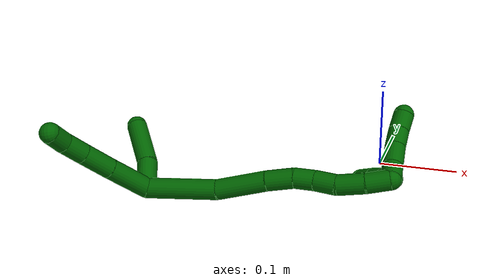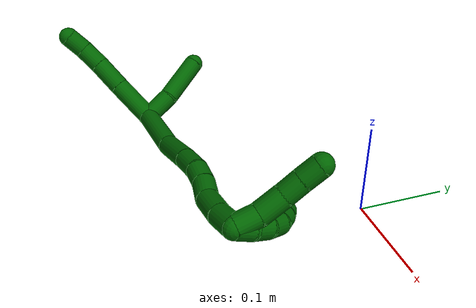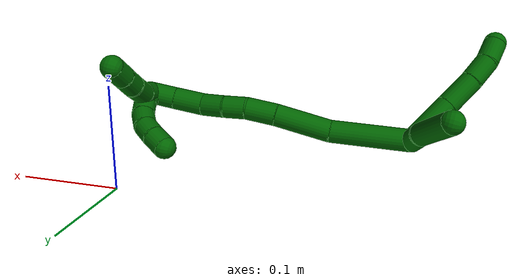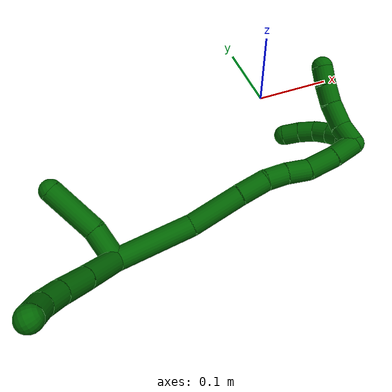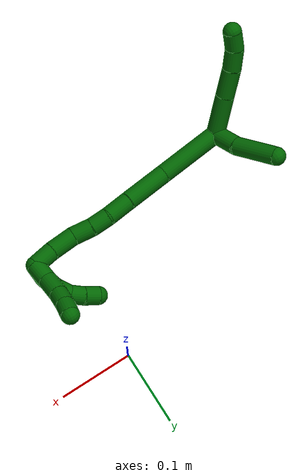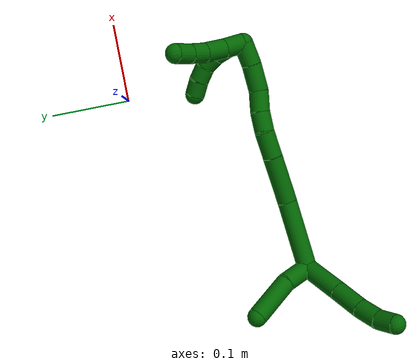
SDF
<sdf version="1.7">
 <world name="default">
  <model name="6">
   <static>0</static>
   <link name="6">
    <collision name="collision-cylinder-e_1_2_8">
     <pose>0.005439 -0.024422 0.012985 1.08212 0.194163 0.116902</pose>
     <geometry><cylinder><radius>0.0125</radius><length>0.056378</length></cylinder></geometry>
     <surface>
      <friction><ode><mu>1.16</mu><mu2>1.16</mu2><slip1>0</slip1><slip2>0</slip2></ode></friction>
      <contact><ode><kp>1e+06</kp><kd>1</kd><max_vel>0</max_vel><min_depth>0.001</min_depth></ode></contact>
     </surface>
    </collision>
    <visual name="visual-cylinder-e_1_2_8">
     <pose>0.005439 -0.024422 0.012985 1.08212 0.194163 0.116902</pose>
     <geometry><cylinder><radius>0.0125</radius><length>0.056378</length></cylinder></geometry>
     <material><ambient>0 0.392157 0.003922 1</ambient></material>
    </visual>
    <collision name="collision-cylinder-e_2_8_9">
     <pose>0.015054 -0.065844 0.034896 1.0873 0.214173 0.129762</pose>
     <geometry><cylinder><radius>0.0125</radius><length>0.0393</length></cylinder></geometry>
     <surface>
      <friction><ode><mu>1.16</mu><mu2>1.16</mu2><slip1>0</slip1><slip2>0</slip2></ode></friction>
      <contact><ode><kp>1e+06</kp><kd>1</kd><max_vel>0</max_vel><min_depth>0.001</min_depth></ode></contact>
     </surface>
    </collision>
    <visual name="visual-cylinder-e_2_8_9">
     <pose>0.015054 -0.065844 0.034896 1.0873 0.214173 0.129762</pose>
     <geometry><cylinder><radius>0.0125</radius><length>0.0393</length></cylinder></geometry>
     <material><ambient>0 0.392157 0.003922 1</ambient></material>
    </visual>
    <collision name="collision-cylinder-e_3_9_10">
     <pose>0.021712 -0.09614 0.04926 1.18256 0.171063 0.115008</pose>
     <geometry><cylinder><radius>0.0125</radius><length>0.029154</length></cylinder></geometry>
     <surface>
      <friction><ode><mu>1.16</mu><mu2>1.16</mu2><slip1>0</slip1><slip2>0</slip2></ode></friction>
      <contact><ode><kp>1e+06</kp><kd>1</kd><max_vel>0</max_vel><min_depth>0.001</min_depth></ode></contact>
     </surface>
    </collision>
    <visual name="visual-cylinder-e_3_9_10">
     <pose>0.021712 -0.09614 0.04926 1.18256 0.171063 0.115008</pose>
     <geometry><cylinder><radius>0.0125</radius><length>0.029154</length></cylinder></geometry>
     <material><ambient>0 0.392157 0.003922 1</ambient></material>
    </visual>
    <collision name="collision-cylinder-e_4_10_6">
     <pose>0.025386 -0.121839 0.056448 1.43059 0.094866 0.082433</pose>
     <geometry><cylinder><radius>0.0125</radius><length>0.025168</length></cylinder></geometry>
     <surface>
      <friction><ode><mu>1.16</mu><mu2>1.16</mu2><slip1>0</slip1><slip2>0</slip2></ode></friction>
      <contact><ode><kp>1e+06</kp><kd>1</kd><max_vel>0</max_vel><min_depth>0.001</min_depth></ode></contact>
     </surface>
    </collision>
    <visual name="visual-cylinder-e_4_10_6">
     <pose>0.025386 -0.121839 0.056448 1.43059 0.094866 0.082433</pose>
     <geometry><cylinder><radius>0.0125</radius><length>0.025168</length></cylinder></geometry>
     <material><ambient>0 0.392157 0.003922 1</ambient></material>
    </visual>
    <collision name="collision-cylinder-e_1_2_11">
     <pose>0.018455 0.004788 0.002814 -1.03945 1.27849 -0.804335</pose>
     <geometry><cylinder><radius>0.0125</radius><length>0.038545</length></cylinder></geometry>
     <surface>
      <friction><ode><mu>1.16</mu><mu2>1.16</mu2><slip1>0</slip1><slip2>0</slip2></ode></friction>
      <contact><ode><kp>1e+06</kp><kd>1</kd><max_vel>0</max_vel><min_depth>0.001</min_depth></ode></contact>
     </surface>
    </collision>
    <visual name="visual-cylinder-e_1_2_11">
     <pose>0.018455 0.004788 0.002814 -1.03945 1.27849 -0.804335</pose>
     <geometry><cylinder><radius>0.0125</radius><length>0.038545</length></cylinder></geometry>
     <material><ambient>0 0.392157 0.003922 1</ambient></material>
    </visual>
    <collision name="collision-cylinder-e_2_11_5">
     <pose>0.065141 0.014429 0.016747 -0.411565 1.16493 -0.273275</pose>
     <geometry><cylinder><radius>0.0125</radius><length>0.061455</length></cylinder></geometry>
     <surface>
      <friction><ode><mu>1.16</mu><mu2>1.16</mu2><slip1>0</slip1><slip2>0</slip2></ode></friction>
      <contact><ode><kp>1e+06</kp><kd>1</kd><max_vel>0</max_vel><min_depth>0.001</min_depth></ode></contact>
     </surface>
    </collision>
    <visual name="visual-cylinder-e_2_11_5">
     <pose>0.065141 0.014429 0.016747 -0.411565 1.16493 -0.273275</pose>
     <geometry><cylinder><radius>0.0125</radius><length>0.061455</length></cylinder></geometry>
     <material><ambient>0 0.392157 0.003922 1</ambient></material>
    </visual>
    <collision name="collision-cylinder-e_1_2_12">
     <pose>-0.003775 0.006653 -0.043632 -2.99028 -0.085334 1.02586</pose>
     <geometry><cylinder><radius>0.0125</radius><length>0.088594</length></cylinder></geometry>
     <surface>
      <friction><ode><mu>1.16</mu><mu2>1.16</mu2><slip1>0</slip1><slip2>0</slip2></ode></friction>
      <contact><ode><kp>1e+06</kp><kd>1</kd><max_vel>0</max_vel><min_depth>0.001</min_depth></ode></contact>
     </surface>
    </collision>
    <visual name="visual-cylinder-e_1_2_12">
     <pose>-0.003775 0.006653 -0.043632 -2.99028 -0.085334 1.02586</pose>
     <geometry><cylinder><radius>0.0125</radius><length>0.088594</length></cylinder></geometry>
     <material><ambient>0 0.392157 0.003922 1</ambient></material>
    </visual>
    <collision name="collision-cylinder-e_2_12_13">
     <pose>-0.005085 0.014497 -0.118224 -3.10315 0.079412 -2.24021</pose>
     <geometry><cylinder><radius>0.0125</radius><length>0.062164</length></cylinder></geometry>
     <surface>
      <friction><ode><mu>1.16</mu><mu2>1.16</mu2><slip1>0</slip1><slip2>0</slip2></ode></friction>
      <contact><ode><kp>1e+06</kp><kd>1</kd><max_vel>0</max_vel><min_depth>0.001</min_depth></ode></contact>
     </surface>
    </collision>
    <visual name="visual-cylinder-e_2_12_13">
     <pose>-0.005085 0.014497 -0.118224 -3.10315 0.079412 -2.24021</pose>
     <geometry><cylinder><radius>0.0125</radius><length>0.062164</length></cylinder></geometry>
     <material><ambient>0 0.392157 0.003922 1</ambient></material>
    </visual>
    <collision name="collision-cylinder-e_3_13_14">
     <pose>-0.002239 0.017157 -0.165957 -3.05422 0.022618 -0.506312</pose>
     <geometry><cylinder><radius>0.0125</radius><length>0.03368</length></cylinder></geometry>
     <surface>
      <friction><ode><mu>1.16</mu><mu2>1.16</mu2><slip1>0</slip1><slip2>0</slip2></ode></friction>
      <contact><ode><kp>1e+06</kp><kd>1</kd><max_vel>0</max_vel><min_depth>0.001</min_depth></ode></contact>
     </surface>
    </collision>
    <visual name="visual-cylinder-e_3_13_14">
     <pose>-0.002239 0.017157 -0.165957 -3.05422 0.022618 -0.506312</pose>
     <geometry><cylinder><radius>0.0125</radius><length>0.03368</length></cylinder></geometry>
     <material><ambient>0 0.392157 0.003922 1</ambient></material>
    </visual>
    <collision name="collision-cylinder-e_4_14_15">
     <pose>-0.004227 0.02035 -0.194959 -3.00154 -0.189494 1.86996</pose>
     <geometry><cylinder><radius>0.0125</radius><length>0.025155</length></cylinder></geometry>
     <surface>
      <friction><ode><mu>1.16</mu><mu2>1.16</mu2><slip1>0</slip1><slip2>0</slip2></ode></friction>
      <contact><ode><kp>1e+06</kp><kd>1</kd><max_vel>0</max_vel><min_depth>0.001</min_depth></ode></contact>
     </surface>
    </collision>
    <visual name="visual-cylinder-e_4_14_15">
     <pose>-0.004227 0.02035 -0.194959 -3.00154 -0.189494 1.86996</pose>
     <geometry><cylinder><radius>0.0125</radius><length>0.025155</length></cylinder></geometry>
     <material><ambient>0 0.392157 0.003922 1</ambient></material>
    </visual>
    <collision name="collision-cylinder-e_5_15_16">
     <pose>-0.010687 0.02259 -0.22012 -3.10172 -0.306191 2.88456</pose>
     <geometry><cylinder><radius>0.0125</radius><length>0.027142</length></cylinder></geometry>
     <surface>
      <friction><ode><mu>1.16</mu><mu2>1.16</mu2><slip1>0</slip1><slip2>0</slip2></ode></friction>
      <contact><ode><kp>1e+06</kp><kd>1</kd><max_vel>0</max_vel><min_depth>0.001</min_depth></ode></contact>
     </surface>
    </collision>
    <visual name="visual-cylinder-e_5_15_16">
     <pose>-0.010687 0.02259 -0.22012 -3.10172 -0.306191 2.88456</pose>
     <geometry><cylinder><radius>0.0125</radius><length>0.027142</length></cylinder></geometry>
     <material><ambient>0 0.392157 0.003922 1</ambient></material>
    </visual>
    <collision name="collision-cylinder-e_6_16_17">
     <pose>-0.01524 0.024236 -0.250117 -3.07548 -0.027044 0.776346</pose>
     <geometry><cylinder><radius>0.0125</radius><length>0.034222</length></cylinder></geometry>
     <surface>
      <friction><ode><mu>1.16</mu><mu2>1.16</mu2><slip1>0</slip1><slip2>0</slip2></ode></friction>
      <contact><ode><kp>1e+06</kp><kd>1</kd><max_vel>0</max_vel><min_depth>0.001</min_depth></ode></contact>
     </surface>
    </collision>
    <visual name="visual-cylinder-e_6_16_17">
     <pose>-0.01524 0.024236 -0.250117 -3.07548 -0.027044 0.776346</pose>
     <geometry><cylinder><radius>0.0125</radius><length>0.034222</length></cylinder></geometry>
     <material><ambient>0 0.392157 0.003922 1</ambient></material>
    </visual>
    <collision name="collision-cylinder-e_7_17_1">
     <pose>-0.014525 0.026996 -0.281566 -3.02875 0.081165 -1.24665</pose>
     <geometry><cylinder><radius>0.0125</radius><length>0.029043</length></cylinder></geometry>
     <surface>
      <friction><ode><mu>1.16</mu><mu2>1.16</mu2><slip1>0</slip1><slip2>0</slip2></ode></friction>
      <contact><ode><kp>1e+06</kp><kd>1</kd><max_vel>0</max_vel><min_depth>0.001</min_depth></ode></contact>
     </surface>
    </collision>
    <visual name="visual-cylinder-e_7_17_1">
     <pose>-0.014525 0.026996 -0.281566 -3.02875 0.081165 -1.24665</pose>
     <geometry><cylinder><radius>0.0125</radius><length>0.029043</length></cylinder></geometry>
     <material><ambient>0 0.392157 0.003922 1</ambient></material>
    </visual>
    <collision name="collision-cylinder-e_1_1_18">
     <pose>-0.009691 0.037878 -0.29494 -1.46222 0.374382 -0.336555</pose>
     <geometry><cylinder><radius>0.0125</radius><length>0.02</length></cylinder></geometry>
     <surface>
      <friction><ode><mu>1.16</mu><mu2>1.16</mu2><slip1>0</slip1><slip2>0</slip2></ode></friction>
      <contact><ode><kp>1e+06</kp><kd>1</kd><max_vel>0</max_vel><min_depth>0.001</min_depth></ode></contact>
     </surface>
    </collision>
    <visual name="visual-cylinder-e_1_1_18">
     <pose>-0.009691 0.037878 -0.29494 -1.46222 0.374382 -0.336555</pose>
     <geometry><cylinder><radius>0.0125</radius><length>0.02</length></cylinder></geometry>
     <material><ambient>0 0.392157 0.003922 1</ambient></material>
    </visual>
    <collision name="collision-cylinder-e_2_18_19">
     <pose>-0.00234 0.055805 -0.290596 -1.20376 0.378322 -0.261512</pose>
     <geometry><cylinder><radius>0.0125</radius><length>0.02</length></cylinder></geometry>
     <surface>
      <friction><ode><mu>1.16</mu><mu2>1.16</mu2><slip1>0</slip1><slip2>0</slip2></ode></friction>
      <contact><ode><kp>1e+06</kp><kd>1</kd><max_vel>0</max_vel><min_depth>0.001</min_depth></ode></contact>
     </surface>
    </collision>
    <visual name="visual-cylinder-e_2_18_19">
     <pose>-0.00234 0.055805 -0.290596 -1.20376 0.378322 -0.261512</pose>
     <geometry><cylinder><radius>0.0125</radius><length>0.02</length></cylinder></geometry>
     <material><ambient>0 0.392157 0.003922 1</ambient></material>
    </visual>
    <collision name="collision-cylinder-e_3_19_20">
     <pose>0.004927 0.072112 -0.28188 -0.956769 0.365487 -0.191082</pose>
     <geometry><cylinder><radius>0.0125</radius><length>0.02</length></cylinder></geometry>
     <surface>
      <friction><ode><mu>1.16</mu><mu2>1.16</mu2><slip1>0</slip1><slip2>0</slip2></ode></friction>
      <contact><ode><kp>1e+06</kp><kd>1</kd><max_vel>0</max_vel><min_depth>0.001</min_depth></ode></contact>
     </surface>
    </collision>
    <visual name="visual-cylinder-e_3_19_20">
     <pose>0.004927 0.072112 -0.28188 -0.956769 0.365487 -0.191082</pose>
     <geometry><cylinder><radius>0.0125</radius><length>0.02</length></cylinder></geometry>
     <material><ambient>0 0.392157 0.003922 1</ambient></material>
    </visual>
    <collision name="collision-cylinder-e_4_20_21">
     <pose>0.011412 0.085192 -0.268634 -0.605609 0.29536 -0.092884</pose>
     <geometry><cylinder><radius>0.0125</radius><length>0.02</length></cylinder></geometry>
     <surface>
      <friction><ode><mu>1.16</mu><mu2>1.16</mu2><slip1>0</slip1><slip2>0</slip2></ode></friction>
      <contact><ode><kp>1e+06</kp><kd>1</kd><max_vel>0</max_vel><min_depth>0.001</min_depth></ode></contact>
     </surface>
    </collision>
    <visual name="visual-cylinder-e_4_20_21">
     <pose>0.011412 0.085192 -0.268634 -0.605609 0.29536 -0.092884</pose>
     <geometry><cylinder><radius>0.0125</radius><length>0.02</length></cylinder></geometry>
     <material><ambient>0 0.392157 0.003922 1</ambient></material>
    </visual>
    <collision name="collision-cylinder-e_5_21_4">
     <pose>0.016127 0.095429 -0.252178 -0.508765 0.181372 -0.04728</pose>
     <geometry><cylinder><radius>0.0125</radius><length>0.02</length></cylinder></geometry>
     <surface>
      <friction><ode><mu>1.16</mu><mu2>1.16</mu2><slip1>0</slip1><slip2>0</slip2></ode></friction>
      <contact><ode><kp>1e+06</kp><kd>1</kd><max_vel>0</max_vel><min_depth>0.001</min_depth></ode></contact>
     </surface>
    </collision>
    <visual name="visual-cylinder-e_5_21_4">
     <pose>0.016127 0.095429 -0.252178 -0.508765 0.181372 -0.04728</pose>
     <geometry><cylinder><radius>0.0125</radius><length>0.02</length></cylinder></geometry>
     <material><ambient>0 0.392157 0.003922 1</ambient></material>
    </visual>
    <collision name="collision-cylinder-e_1_1_22">
     <pose>-0.002904 0.035704 -0.295779 -1.54694 0.975026 -0.955407</pose>
     <geometry><cylinder><radius>0.0125</radius><length>0.025236</length></cylinder></geometry>
     <surface>
      <friction><ode><mu>1.16</mu><mu2>1.16</mu2><slip1>0</slip1><slip2>0</slip2></ode></friction>
      <contact><ode><kp>1e+06</kp><kd>1</kd><max_vel>0</max_vel><min_depth>0.001</min_depth></ode></contact>
     </surface>
    </collision>
    <visual name="visual-cylinder-e_1_1_22">
     <pose>-0.002904 0.035704 -0.295779 -1.54694 0.975026 -0.955407</pose>
     <geometry><cylinder><radius>0.0125</radius><length>0.025236</length></cylinder></geometry>
     <material><ambient>0 0.392157 0.003922 1</ambient></material>
    </visual>
    <collision name="collision-cylinder-e_2_22_23">
     <pose>0.021729 0.04711 -0.296939 -1.86863 1.26196 -1.55926</pose>
     <geometry><cylinder><radius>0.0125</radius><length>0.029786</length></cylinder></geometry>
     <surface>
      <friction><ode><mu>1.16</mu><mu2>1.16</mu2><slip1>0</slip1><slip2>0</slip2></ode></friction>
      <contact><ode><kp>1e+06</kp><kd>1</kd><max_vel>0</max_vel><min_depth>0.001</min_depth></ode></contact>
     </surface>
    </collision>
    <visual name="visual-cylinder-e_2_22_23">
     <pose>0.021729 0.04711 -0.296939 -1.86863 1.26196 -1.55926</pose>
     <geometry><cylinder><radius>0.0125</radius><length>0.029786</length></cylinder></geometry>
     <material><ambient>0 0.392157 0.003922 1</ambient></material>
    </visual>
    <collision name="collision-cylinder-e_3_23_24">
     <pose>0.0468 0.053438 -0.30059 -2.43061 1.29624 -2.2299</pose>
     <geometry><cylinder><radius>0.0125</radius><length>0.022612</length></cylinder></geometry>
     <surface>
      <friction><ode><mu>1.16</mu><mu2>1.16</mu2><slip1>0</slip1><slip2>0</slip2></ode></friction>
      <contact><ode><kp>1e+06</kp><kd>1</kd><max_vel>0</max_vel><min_depth>0.001</min_depth></ode></contact>
     </surface>
    </collision>
    <visual name="visual-cylinder-e_3_23_24">
     <pose>0.0468 0.053438 -0.30059 -2.43061 1.29624 -2.2299</pose>
     <geometry><cylinder><radius>0.0125</radius><length>0.022612</length></cylinder></geometry>
     <material><ambient>0 0.392157 0.003922 1</ambient></material>
    </visual>
    <collision name="collision-cylinder-e_4_24_3">
     <pose>0.068284 0.057226 -0.305989 -2.61545 1.24699 -2.425</pose>
     <geometry><cylinder><radius>0.0125</radius><length>0.022365</length></cylinder></geometry>
     <surface>
      <friction><ode><mu>1.16</mu><mu2>1.16</mu2><slip1>0</slip1><slip2>0</slip2></ode></friction>
      <contact><ode><kp>1e+06</kp><kd>1</kd><max_vel>0</max_vel><min_depth>0.001</min_depth></ode></contact>
     </surface>
    </collision>
    <visual name="visual-cylinder-e_4_24_3">
     <pose>0.068284 0.057226 -0.305989 -2.61545 1.24699 -2.425</pose>
     <geometry><cylinder><radius>0.0125</radius><length>0.022365</length></cylinder></geometry>
     <material><ambient>0 0.392157 0.003922 1</ambient></material>
    </visual>
    <collision name="collision-sphere-3">
     <pose>0.078886 0.059012 -0.309066 0 -0 0</pose>
     <geometry><sphere><radius>0.0125</radius></sphere></geometry>
     <surface>
      <friction><ode><mu>1.16</mu><mu2>1.16</mu2><slip1>0</slip1><slip2>0</slip2></ode></friction>
      <contact><ode><kp>1e+06</kp><kd>1</kd><max_vel>0</max_vel><min_depth>0.001</min_depth></ode></contact>
     </surface>
    </collision>
    <visual name="visual-sphere-3">
     <pose>0.078886 0.059012 -0.309066 0 -0 0</pose>
     <geometry><sphere><radius>0.0125</radius></sphere></geometry>
     <material><ambient>0 0.392157 0.003922 1</ambient></material>
    </visual>
    <collision name="collision-sphere-24">
     <pose>0.057683 0.055439 -0.302912 0 -0 0</pose>
     <geometry><sphere><radius>0.0125</radius></sphere></geometry>
     <surface>
      <friction><ode><mu>1.16</mu><mu2>1.16</mu2><slip1>0</slip1><slip2>0</slip2></ode></friction>
      <contact><ode><kp>1e+06</kp><kd>1</kd><max_vel>0</max_vel><min_depth>0.001</min_depth></ode></contact>
     </surface>
    </collision>
    <visual name="visual-sphere-24">
     <pose>0.057683 0.055439 -0.302912 0 -0 0</pose>
     <geometry><sphere><radius>0.0125</radius></sphere></geometry>
     <material><ambient>0 0.392157 0.003922 1</ambient></material>
    </visual>
    <collision name="collision-sphere-23">
     <pose>0.035918 0.051438 -0.298267 0 -0 0</pose>
     <geometry><sphere><radius>0.0125</radius></sphere></geometry>
     <surface>
      <friction><ode><mu>1.16</mu><mu2>1.16</mu2><slip1>0</slip1><slip2>0</slip2></ode></friction>
      <contact><ode><kp>1e+06</kp><kd>1</kd><max_vel>0</max_vel><min_depth>0.001</min_depth></ode></contact>
     </surface>
    </collision>
    <visual name="visual-sphere-23">
     <pose>0.035918 0.051438 -0.298267 0 -0 0</pose>
     <geometry><sphere><radius>0.0125</radius></sphere></geometry>
     <material><ambient>0 0.392157 0.003922 1</ambient></material>
    </visual>
    <collision name="collision-sphere-22">
     <pose>0.00754 0.042783 -0.29561 0 -0 0</pose>
     <geometry><sphere><radius>0.0125</radius></sphere></geometry>
     <surface>
      <friction><ode><mu>1.16</mu><mu2>1.16</mu2><slip1>0</slip1><slip2>0</slip2></ode></friction>
      <contact><ode><kp>1e+06</kp><kd>1</kd><max_vel>0</max_vel><min_depth>0.001</min_depth></ode></contact>
     </surface>
    </collision>
    <visual name="visual-sphere-22">
     <pose>0.00754 0.042783 -0.29561 0 -0 0</pose>
     <geometry><sphere><radius>0.0125</radius></sphere></geometry>
     <material><ambient>0 0.392157 0.003922 1</ambient></material>
    </visual>
    <collision name="collision-sphere-4">
     <pose>0.017931 0.10022 -0.243588 0 -0 0</pose>
     <geometry><sphere><radius>0.0125</radius></sphere></geometry>
     <surface>
      <friction><ode><mu>1.16</mu><mu2>1.16</mu2><slip1>0</slip1><slip2>0</slip2></ode></friction>
      <contact><ode><kp>1e+06</kp><kd>1</kd><max_vel>0</max_vel><min_depth>0.001</min_depth></ode></contact>
     </surface>
    </collision>
    <visual name="visual-sphere-4">
     <pose>0.017931 0.10022 -0.243588 0 -0 0</pose>
     <geometry><sphere><radius>0.0125</radius></sphere></geometry>
     <material><ambient>0 0.392157 0.003922 1</ambient></material>
    </visual>
    <collision name="collision-sphere-21">
     <pose>0.014323 0.090638 -0.260768 0 -0 0</pose>
     <geometry><sphere><radius>0.0125</radius></sphere></geometry>
     <surface>
      <friction><ode><mu>1.16</mu><mu2>1.16</mu2><slip1>0</slip1><slip2>0</slip2></ode></friction>
      <contact><ode><kp>1e+06</kp><kd>1</kd><max_vel>0</max_vel><min_depth>0.001</min_depth></ode></contact>
     </surface>
    </collision>
    <visual name="visual-sphere-21">
     <pose>0.014323 0.090638 -0.260768 0 -0 0</pose>
     <geometry><sphere><radius>0.0125</radius></sphere></geometry>
     <material><ambient>0 0.392157 0.003922 1</ambient></material>
    </visual>
    <collision name="collision-sphere-20">
     <pose>0.008501 0.079746 -0.276499 0 -0 0</pose>
     <geometry><sphere><radius>0.0125</radius></sphere></geometry>
     <surface>
      <friction><ode><mu>1.16</mu><mu2>1.16</mu2><slip1>0</slip1><slip2>0</slip2></ode></friction>
      <contact><ode><kp>1e+06</kp><kd>1</kd><max_vel>0</max_vel><min_depth>0.001</min_depth></ode></contact>
     </surface>
    </collision>
    <visual name="visual-sphere-20">
     <pose>0.008501 0.079746 -0.276499 0 -0 0</pose>
     <geometry><sphere><radius>0.0125</radius></sphere></geometry>
     <material><ambient>0 0.392157 0.003922 1</ambient></material>
    </visual>
    <collision name="collision-sphere-11">
     <pose>0.03691 0.009576 0.005628 0 -0 0</pose>
     <geometry><sphere><radius>0.0125</radius></sphere></geometry>
     <surface>
      <friction><ode><mu>1.16</mu><mu2>1.16</mu2><slip1>0</slip1><slip2>0</slip2></ode></friction>
      <contact><ode><kp>1e+06</kp><kd>1</kd><max_vel>0</max_vel><min_depth>0.001</min_depth></ode></contact>
     </surface>
    </collision>
    <visual name="visual-sphere-11">
     <pose>0.03691 0.009576 0.005628 0 -0 0</pose>
     <geometry><sphere><radius>0.0125</radius></sphere></geometry>
     <material><ambient>0 0.392157 0.003922 1</ambient></material>
    </visual>
    <collision name="collision-sphere-6">
     <pose>0.026578 -0.134244 0.058199 0 -0 0</pose>
     <geometry><sphere><radius>0.0125</radius></sphere></geometry>
     <surface>
      <friction><ode><mu>1.16</mu><mu2>1.16</mu2><slip1>0</slip1><slip2>0</slip2></ode></friction>
      <contact><ode><kp>1e+06</kp><kd>1</kd><max_vel>0</max_vel><min_depth>0.001</min_depth></ode></contact>
     </surface>
    </collision>
    <visual name="visual-sphere-6">
     <pose>0.026578 -0.134244 0.058199 0 -0 0</pose>
     <geometry><sphere><radius>0.0125</radius></sphere></geometry>
     <material><ambient>0 0.392157 0.003922 1</ambient></material>
    </visual>
    <collision name="collision-sphere-10">
     <pose>0.024194 -0.109435 0.054697 0 -0 0</pose>
     <geometry><sphere><radius>0.0125</radius></sphere></geometry>
     <surface>
      <friction><ode><mu>1.16</mu><mu2>1.16</mu2><slip1>0</slip1><slip2>0</slip2></ode></friction>
      <contact><ode><kp>1e+06</kp><kd>1</kd><max_vel>0</max_vel><min_depth>0.001</min_depth></ode></contact>
     </surface>
    </collision>
    <visual name="visual-sphere-10">
     <pose>0.024194 -0.109435 0.054697 0 -0 0</pose>
     <geometry><sphere><radius>0.0125</radius></sphere></geometry>
     <material><ambient>0 0.392157 0.003922 1</ambient></material>
    </visual>
    <collision name="collision-sphere-9">
     <pose>0.019231 -0.082845 0.043822 0 -0 0</pose>
     <geometry><sphere><radius>0.0125</radius></sphere></geometry>
     <surface>
      <friction><ode><mu>1.16</mu><mu2>1.16</mu2><slip1>0</slip1><slip2>0</slip2></ode></friction>
      <contact><ode><kp>1e+06</kp><kd>1</kd><max_vel>0</max_vel><min_depth>0.001</min_depth></ode></contact>
     </surface>
    </collision>
    <visual name="visual-sphere-9">
     <pose>0.019231 -0.082845 0.043822 0 -0 0</pose>
     <geometry><sphere><radius>0.0125</radius></sphere></geometry>
     <material><ambient>0 0.392157 0.003922 1</ambient></material>
    </visual>
    <collision name="collision-sphere-2">
     <geometry><sphere><radius>0.0125</radius></sphere></geometry>
     <surface>
      <friction><ode><mu>1.16</mu><mu2>1.16</mu2><slip1>0</slip1><slip2>0</slip2></ode></friction>
      <contact><ode><kp>1e+06</kp><kd>1</kd><max_vel>0</max_vel><min_depth>0.001</min_depth></ode></contact>
     </surface>
    </collision>
    <visual name="visual-sphere-2">
     <geometry><sphere><radius>0.0125</radius></sphere></geometry>
     <material><ambient>0 0.392157 0.003922 1</ambient></material>
    </visual>
    <collision name="collision-sphere-19">
     <pose>0.001353 0.064479 -0.287261 0 -0 0</pose>
     <geometry><sphere><radius>0.0125</radius></sphere></geometry>
     <surface>
      <friction><ode><mu>1.16</mu><mu2>1.16</mu2><slip1>0</slip1><slip2>0</slip2></ode></friction>
      <contact><ode><kp>1e+06</kp><kd>1</kd><max_vel>0</max_vel><min_depth>0.001</min_depth></ode></contact>
     </surface>
    </collision>
    <visual name="visual-sphere-19">
     <pose>0.001353 0.064479 -0.287261 0 -0 0</pose>
     <geometry><sphere><radius>0.0125</radius></sphere></geometry>
     <material><ambient>0 0.392157 0.003922 1</ambient></material>
    </visual>
    <collision name="collision-sphere-8">
     <pose>0.010878 -0.048844 0.02597 0 -0 0</pose>
     <geometry><sphere><radius>0.0125</radius></sphere></geometry>
     <surface>
      <friction><ode><mu>1.16</mu><mu2>1.16</mu2><slip1>0</slip1><slip2>0</slip2></ode></friction>
      <contact><ode><kp>1e+06</kp><kd>1</kd><max_vel>0</max_vel><min_depth>0.001</min_depth></ode></contact>
     </surface>
    </collision>
    <visual name="visual-sphere-8">
     <pose>0.010878 -0.048844 0.02597 0 -0 0</pose>
     <geometry><sphere><radius>0.0125</radius></sphere></geometry>
     <material><ambient>0 0.392157 0.003922 1</ambient></material>
    </visual>
    <collision name="collision-sphere-5">
     <pose>0.093372 0.019282 0.027865 0 -0 0</pose>
     <geometry><sphere><radius>0.0125</radius></sphere></geometry>
     <surface>
      <friction><ode><mu>1.16</mu><mu2>1.16</mu2><slip1>0</slip1><slip2>0</slip2></ode></friction>
      <contact><ode><kp>1e+06</kp><kd>1</kd><max_vel>0</max_vel><min_depth>0.001</min_depth></ode></contact>
     </surface>
    </collision>
    <visual name="visual-sphere-5">
     <pose>0.093372 0.019282 0.027865 0 -0 0</pose>
     <geometry><sphere><radius>0.0125</radius></sphere></geometry>
     <material><ambient>0 0.392157 0.003922 1</ambient></material>
    </visual>
    <collision name="collision-sphere-12">
     <pose>-0.007551 0.013306 -0.087263 0 -0 0</pose>
     <geometry><sphere><radius>0.0125</radius></sphere></geometry>
     <surface>
      <friction><ode><mu>1.16</mu><mu2>1.16</mu2><slip1>0</slip1><slip2>0</slip2></ode></friction>
      <contact><ode><kp>1e+06</kp><kd>1</kd><max_vel>0</max_vel><min_depth>0.001</min_depth></ode></contact>
     </surface>
    </collision>
    <visual name="visual-sphere-12">
     <pose>-0.007551 0.013306 -0.087263 0 -0 0</pose>
     <geometry><sphere><radius>0.0125</radius></sphere></geometry>
     <material><ambient>0 0.392157 0.003922 1</ambient></material>
    </visual>
    <collision name="collision-sphere-13">
     <pose>-0.002619 0.015688 -0.149185 0 -0 0</pose>
     <geometry><sphere><radius>0.0125</radius></sphere></geometry>
     <surface>
      <friction><ode><mu>1.16</mu><mu2>1.16</mu2><slip1>0</slip1><slip2>0</slip2></ode></friction>
      <contact><ode><kp>1e+06</kp><kd>1</kd><max_vel>0</max_vel><min_depth>0.001</min_depth></ode></contact>
     </surface>
    </collision>
    <visual name="visual-sphere-13">
     <pose>-0.002619 0.015688 -0.149185 0 -0 0</pose>
     <geometry><sphere><radius>0.0125</radius></sphere></geometry>
     <material><ambient>0 0.392157 0.003922 1</ambient></material>
    </visual>
    <collision name="collision-sphere-14">
     <pose>-0.001858 0.018626 -0.182728 0 -0 0</pose>
     <geometry><sphere><radius>0.0125</radius></sphere></geometry>
     <surface>
      <friction><ode><mu>1.16</mu><mu2>1.16</mu2><slip1>0</slip1><slip2>0</slip2></ode></friction>
      <contact><ode><kp>1e+06</kp><kd>1</kd><max_vel>0</max_vel><min_depth>0.001</min_depth></ode></contact>
     </surface>
    </collision>
    <visual name="visual-sphere-14">
     <pose>-0.001858 0.018626 -0.182728 0 -0 0</pose>
     <geometry><sphere><radius>0.0125</radius></sphere></geometry>
     <material><ambient>0 0.392157 0.003922 1</ambient></material>
    </visual>
    <collision name="collision-sphere-15">
     <pose>-0.006596 0.022074 -0.207191 0 -0 0</pose>
     <geometry><sphere><radius>0.0125</radius></sphere></geometry>
     <surface>
      <friction><ode><mu>1.16</mu><mu2>1.16</mu2><slip1>0</slip1><slip2>0</slip2></ode></friction>
      <contact><ode><kp>1e+06</kp><kd>1</kd><max_vel>0</max_vel><min_depth>0.001</min_depth></ode></contact>
     </surface>
    </collision>
    <visual name="visual-sphere-15">
     <pose>-0.006596 0.022074 -0.207191 0 -0 0</pose>
     <geometry><sphere><radius>0.0125</radius></sphere></geometry>
     <material><ambient>0 0.392157 0.003922 1</ambient></material>
    </visual>
    <collision name="collision-sphere-16">
     <pose>-0.014777 0.023106 -0.233049 0 -0 0</pose>
     <geometry><sphere><radius>0.0125</radius></sphere></geometry>
     <surface>
      <friction><ode><mu>1.16</mu><mu2>1.16</mu2><slip1>0</slip1><slip2>0</slip2></ode></friction>
      <contact><ode><kp>1e+06</kp><kd>1</kd><max_vel>0</max_vel><min_depth>0.001</min_depth></ode></contact>
     </surface>
    </collision>
    <visual name="visual-sphere-16">
     <pose>-0.014777 0.023106 -0.233049 0 -0 0</pose>
     <geometry><sphere><radius>0.0125</radius></sphere></geometry>
     <material><ambient>0 0.392157 0.003922 1</ambient></material>
    </visual>
    <collision name="collision-sphere-17">
     <pose>-0.015703 0.025366 -0.267184 0 -0 0</pose>
     <geometry><sphere><radius>0.0125</radius></sphere></geometry>
     <surface>
      <friction><ode><mu>1.16</mu><mu2>1.16</mu2><slip1>0</slip1><slip2>0</slip2></ode></friction>
      <contact><ode><kp>1e+06</kp><kd>1</kd><max_vel>0</max_vel><min_depth>0.001</min_depth></ode></contact>
     </surface>
    </collision>
    <visual name="visual-sphere-17">
     <pose>-0.015703 0.025366 -0.267184 0 -0 0</pose>
     <geometry><sphere><radius>0.0125</radius></sphere></geometry>
     <material><ambient>0 0.392157 0.003922 1</ambient></material>
    </visual>
    <collision name="collision-sphere-1">
     <pose>-0.013348 0.028626 -0.295948 0 -0 0</pose>
     <geometry><sphere><radius>0.0125</radius></sphere></geometry>
     <surface>
      <friction><ode><mu>1.16</mu><mu2>1.16</mu2><slip1>0</slip1><slip2>0</slip2></ode></friction>
      <contact><ode><kp>1e+06</kp><kd>1</kd><max_vel>0</max_vel><min_depth>0.001</min_depth></ode></contact>
     </surface>
    </collision>
    <visual name="visual-sphere-1">
     <pose>-0.013348 0.028626 -0.295948 0 -0 0</pose>
     <geometry><sphere><radius>0.0125</radius></sphere></geometry>
     <material><ambient>0 0.392157 0.003922 1</ambient></material>
    </visual>
    <collision name="collision-sphere-18">
     <pose>-0.006034 0.047131 -0.293931 0 -0 0</pose>
     <geometry><sphere><radius>0.0125</radius></sphere></geometry>
     <surface>
      <friction><ode><mu>1.16</mu><mu2>1.16</mu2><slip1>0</slip1><slip2>0</slip2></ode></friction>
      <contact><ode><kp>1e+06</kp><kd>1</kd><max_vel>0</max_vel><min_depth>0.001</min_depth></ode></contact>
     </surface>
    </collision>
    <visual name="visual-sphere-18">
     <pose>-0.006034 0.047131 -0.293931 0 -0 0</pose>
     <geometry><sphere><radius>0.0125</radius></sphere></geometry>
     <material><ambient>0 0.392157 0.003922 1</ambient></material>
    </visual>
    <inertial>
     <pose>0.011183 0.010354 -0.128048 0 -0 0</pose>
     <mass>0.75</mass>
     <inertia><ixx>0.000117</ixx><ixy>0</ixy><ixz>0</ixz><iyy>6.4e-05</iyy><iyz>0</iyz><izz>-5e-05</izz></inertia>
    </inertial>
   </link>
   <pose>-0.253726 -0.184099 0.011997 -1.89544 -0.799196 1.85728</pose>
  </model>
 </world>
</sdf>
